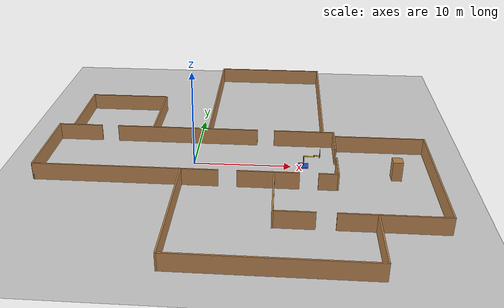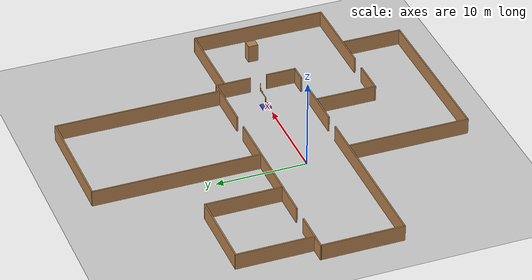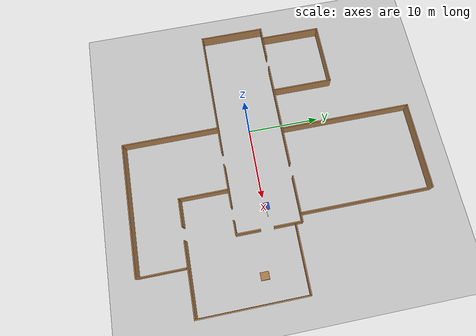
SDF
<sdf version="1.7">
 <world name="default">
  <model name="ground_plane">
   <static>1</static>
   <link name="link">
    <collision name="collision">
     <geometry><plane><normal>0 0 1</normal><size>25 25</size></plane></geometry>
     <surface><friction><ode><mu>100</mu><mu2>50</mu2></ode></friction></surface>
    </collision>
    <visual name="visual">
     <cast_shadows>0</cast_shadows>
     <geometry><plane><normal>0 0 1</normal><size>25 25</size></plane></geometry>
     <material>
      <script><uri>file://media/materials/scripts/gazebo.material</uri><name>Gazebo/Grey</name></script>
     </material>
    </visual>
   </link>
   <link name="startflag">
    <pose>0 0 0.115 0 -0 0</pose>
    <inertial>
     <mass>0.39</mass>
     <inertia><ixx>0.00058</ixx><ixy>0</ixy><ixz>0</ixz><iyy>0.00058</iyy><iyz>0</iyz><izz>0.00019</izz></inertia>
    </inertial>
    <collision name="collision"><geometry><box><size>1 1 0.01</size></box></geometry></collision>
    <visual name="visual">
     <geometry><box><size>1 1 0.01</size></box></geometry>
     <material>
      <script>
       <uri>model://apriltag/materials/scripts</uri>
       <uri>model://apriltag/materials/textures</uri>
       <name>startflag/Diffuse</name>
      </script>
     </material>
    </visual>
   </link>
  </model>
  <model name="house4">
   <pose>4.1908 2.60197 0 0 -0 0</pose>
   <link name="Wall_0">
    <collision name="Wall_0_Collision">
     <geometry><box><size>9.15 0.15 1.8</size></box></geometry>
     <pose>0 0 0.9 0 -0 0</pose>
    </collision>
    <visual name="Wall_0_Visual">
     <pose>0 0 0.9 0 -0 0</pose>
     <geometry><box><size>9.15 0.15 1.8</size></box></geometry>
     <material>
      <script><uri>file://media/materials/scripts/gazebo.material</uri><name>Gazebo/Wood</name></script>
      <ambient>1 1 1 1</ambient>
     </material>
     <meta><layer>0</layer></meta>
    </visual>
    <pose>-19.71 -2.4279 0 0 -0 -1.5708</pose>
   </link>
   <link name="Wall_1">
    <pose>-4.71 -6.9279 0 0 -0 0</pose>
    <visual name="Wall_1_Visual_0">
     <pose>-5.83035 0 0.9 0 -0 0</pose>
     <geometry><box><size>18.4893 0.15 1.8</size></box></geometry>
     <material>
      <script><uri>file://media/materials/scripts/gazebo.material</uri><name>Gazebo/Wood</name></script>
      <ambient>1 1 1 1</ambient>
     </material>
     <meta><layer>0</layer></meta>
    </visual>
    <collision name="Wall_1_Collision_0">
     <geometry><box><size>18.4893 0.15 1.8</size></box></geometry>
     <pose>-5.83035 0 0.9 0 -0 0</pose>
    </collision>
    <visual name="Wall_1_Visual_1">
     <pose>8.25278 0 0.9 0 -0 0</pose>
     <geometry><box><size>6.07697 0.15 1.8</size></box></geometry>
     <material>
      <script><uri>file://media/materials/scripts/gazebo.material</uri><name>Gazebo/Wood</name></script>
      <ambient>1 1 1 1</ambient>
     </material>
     <meta><layer>0</layer></meta>
    </visual>
    <collision name="Wall_1_Collision_1">
     <geometry><box><size>6.07697 0.15 1.8</size></box></geometry>
     <pose>8.25278 0 0.9 0 -0 0</pose>
    </collision>
    <visual name="Wall_1_Visual_2">
     <pose>14.0831 0 0.9 0 -0 0</pose>
     <geometry><box><size>1.98374 0.15 1.8</size></box></geometry>
     <material>
      <script><uri>file://media/materials/scripts/gazebo.material</uri><name>Gazebo/Wood</name></script>
      <ambient>1 1 1 1</ambient>
     </material>
     <meta><layer>0</layer></meta>
    </visual>
    <collision name="Wall_1_Collision_2">
     <geometry><box><size>1.98374 0.15 1.8</size></box></geometry>
     <pose>14.0831 0 0.9 0 -0 0</pose>
    </collision>
   </link>
   <link name="Wall_11">
    <collision name="Wall_11_Collision">
     <geometry><box><size>18.5 0.15 1.8</size></box></geometry>
     <pose>0 0 0.9 0 -0 0</pose>
    </collision>
    <visual name="Wall_11_Visual">
     <pose>0 0 0.9 0 -0 0</pose>
     <geometry><box><size>18.5 0.15 1.8</size></box></geometry>
     <material>
      <script><uri>file://media/materials/scripts/gazebo.material</uri><name>Gazebo/Wood</name></script>
      <ambient>1 1 1 1</ambient>
     </material>
     <meta><layer>0</layer></meta>
    </visual>
    <pose>-3.167 11.2531 0 0 -0 1.5708</pose>
   </link>
   <link name="Wall_12">
    <collision name="Wall_12_Collision">
     <geometry><box><size>12.5 0.15 1.8</size></box></geometry>
     <pose>0 0 0.9 0 -0 0</pose>
    </collision>
    <visual name="Wall_12_Visual">
     <pose>0 0 0.9 0 -0 0</pose>
     <geometry><box><size>12.5 0.15 1.8</size></box></geometry>
     <material>
      <script><uri>file://media/materials/scripts/gazebo.material</uri><name>Gazebo/Wood</name></script>
      <ambient>1 1 1 1</ambient>
     </material>
     <meta><layer>0</layer></meta>
    </visual>
    <pose>3.008 20.4281 0 0 -0 0</pose>
   </link>
   <link name="Wall_13">
    <collision name="Wall_13_Collision">
     <geometry><box><size>18.5 0.15 1.8</size></box></geometry>
     <pose>0 0 0.9 0 -0 0</pose>
    </collision>
    <visual name="Wall_13_Visual">
     <pose>0 0 0.9 0 -0 0</pose>
     <geometry><box><size>18.5 0.15 1.8</size></box></geometry>
     <material>
      <script><uri>file://media/materials/scripts/gazebo.material</uri><name>Gazebo/Wood</name></script>
      <ambient>1 1 1 1</ambient>
     </material>
     <meta><layer>0</layer></meta>
    </visual>
    <pose>9.183 11.2531 0 0 -0 -1.5708</pose>
   </link>
   <link name="Wall_15">
    <collision name="Wall_15_Collision">
     <geometry><box><size>9.5 0.15 1.8</size></box></geometry>
     <pose>0 0 0.9 0 -0 0</pose>
    </collision>
    <visual name="Wall_15_Visual">
     <pose>0 0 0.9 0 -0 0</pose>
     <geometry><box><size>9.5 0.15 1.8</size></box></geometry>
     <material>
      <script><uri>file://media/materials/scripts/gazebo.material</uri><name>Gazebo/Wood</name></script>
      <ambient>1 1 1 1</ambient>
     </material>
     <meta><layer>0</layer></meta>
    </visual>
    <pose>15.035 1.1501 0 0 -0 0</pose>
   </link>
   <link name="Wall_18">
    <collision name="Wall_18_Collision">
     <geometry><box><size>15 0.15 1.8</size></box></geometry>
     <pose>0 0 0.9 0 -0 0</pose>
    </collision>
    <visual name="Wall_18_Visual">
     <pose>0 0 0.9 0 -0 0</pose>
     <geometry><box><size>15 0.15 1.8</size></box></geometry>
     <material>
      <script><uri>file://media/materials/scripts/gazebo.material</uri><name>Gazebo/Wood</name></script>
      <ambient>1 1 1 1</ambient>
     </material>
     <meta><layer>0</layer></meta>
    </visual>
    <pose>19.71 -6.2749 0 0 -0 -1.5708</pose>
   </link>
   <link name="Wall_19">
    <pose>11.91 -13.6999 0 0 -0 3.14159</pose>
    <visual name="Wall_19_Visual_0">
     <pose>-2.84178 0 0.9 0 -0 0</pose>
     <geometry><box><size>10.0664 0.15 1.8</size></box></geometry>
     <material>
      <script><uri>file://media/materials/scripts/gazebo.material</uri><name>Gazebo/Wood</name></script>
      <ambient>1 1 1 1</ambient>
     </material>
     <meta><layer>0</layer></meta>
    </visual>
    <collision name="Wall_19_Collision_0">
     <geometry><box><size>10.0664 0.15 1.8</size></box></geometry>
     <pose>-2.84178 0 0.9 0 -0 0</pose>
    </collision>
    <visual name="Wall_19_Visual_1">
     <pose>5.93323 0 0.9 0 -0 0</pose>
     <geometry><box><size>3.88355 0.15 1.8</size></box></geometry>
     <material>
      <script><uri>file://media/materials/scripts/gazebo.material</uri><name>Gazebo/Wood</name></script>
      <ambient>1 1 1 1</ambient>
     </material>
     <meta><layer>0</layer></meta>
    </visual>
    <collision name="Wall_19_Collision_1">
     <geometry><box><size>3.88355 0.15 1.8</size></box></geometry>
     <pose>5.93323 0 0.9 0 -0 0</pose>
    </collision>
   </link>
   <link name="Wall_2">
    <pose>10.29 -2.4279 0 0 -0 1.5708</pose>
    <visual name="Wall_2_Visual_0">
     <pose>-2.88083 0 0.9 0 -0 0</pose>
     <geometry><box><size>3.38835 0.15 1.8</size></box></geometry>
     <material>
      <script><uri>file://media/materials/scripts/gazebo.material</uri><name>Gazebo/Wood</name></script>
      <ambient>1 1 1 1</ambient>
     </material>
     <meta><layer>0</layer></meta>
    </visual>
    <collision name="Wall_2_Collision_0">
     <geometry><box><size>3.38835 0.15 1.8</size></box></geometry>
     <pose>-2.88083 0 0.9 0 -0 0</pose>
    </collision>
    <visual name="Wall_2_Visual_1">
     <pose>2.59417 0 0.9 0 -0 0</pose>
     <geometry><box><size>3.96165 0.15 1.8</size></box></geometry>
     <material>
      <script><uri>file://media/materials/scripts/gazebo.material</uri><name>Gazebo/Wood</name></script>
      <ambient>1 1 1 1</ambient>
     </material>
     <meta><layer>0</layer></meta>
    </visual>
    <collision name="Wall_2_Collision_1">
     <geometry><box><size>3.96165 0.15 1.8</size></box></geometry>
     <pose>2.59417 0 0.9 0 -0 0</pose>
    </collision>
   </link>
   <link name="Wall_20">
    <collision name="Wall_20_Collision">
     <geometry><box><size>6.75 0.15 1.8</size></box></geometry>
     <pose>0 0 0.9 0 -0 0</pose>
    </collision>
    <visual name="Wall_20_Visual">
     <pose>0 0 0.9 0 -0 0</pose>
     <geometry><box><size>6.75 0.15 1.8</size></box></geometry>
     <material>
      <script><uri>file://media/materials/scripts/gazebo.material</uri><name>Gazebo/Wood</name></script>
      <ambient>1 1 1 1</ambient>
     </material>
     <meta><layer>0</layer></meta>
    </visual>
    <pose>4.11 -10.3999 0 0 -0 1.5708</pose>
   </link>
   <link name="Wall_24">
    <collision name="Wall_24_Collision">
     <geometry><box><size>13.6364 0.15 1.8</size></box></geometry>
     <pose>0 0 0.9 0 -0 0</pose>
    </collision>
    <visual name="Wall_24_Visual">
     <pose>0 0 0.9 0 -0 0</pose>
     <geometry><box><size>13.6364 0.15 1.8</size></box></geometry>
     <material>
      <script><uri>file://media/materials/scripts/gazebo.material</uri><name>Gazebo/Wood</name></script>
      <ambient>1 1 1 1</ambient>
     </material>
     <meta><layer>0</layer></meta>
    </visual>
    <pose>-4.972 -13.6849 0 0 -0 -1.5708</pose>
   </link>
   <link name="Wall_25">
    <collision name="Wall_25_Collision">
     <geometry><box><size>18.412 0.15 1.8</size></box></geometry>
     <pose>0 0 0.9 0 -0 0</pose>
    </collision>
    <visual name="Wall_25_Visual">
     <pose>0 0 0.9 0 -0 0</pose>
     <geometry><box><size>18.412 0.15 1.8</size></box></geometry>
     <material>
      <script><uri>file://media/materials/scripts/gazebo.material</uri><name>Gazebo/Wood</name></script>
      <ambient>1 1 1 1</ambient>
     </material>
     <meta><layer>0</layer></meta>
    </visual>
    <pose>4.159 -20.4279 0 0 -0 0</pose>
   </link>
   <link name="Wall_26">
    <collision name="Wall_26_Collision">
     <geometry><box><size>6.672 0.15 1.8</size></box></geometry>
     <pose>0 0 0.9 0 -0 0</pose>
    </collision>
    <visual name="Wall_26_Visual">
     <pose>0 0 0.9 0 -0 0</pose>
     <geometry><box><size>6.672 0.15 1.8</size></box></geometry>
     <material>
      <script><uri>file://media/materials/scripts/gazebo.material</uri><name>Gazebo/Wood</name></script>
      <ambient>1 1 1 1</ambient>
     </material>
     <meta><layer>0</layer></meta>
    </visual>
    <pose>13.29 -17.1669 0 0 -0 1.5708</pose>
   </link>
   <link name="Wall_3">
    <pose>-4.71 2.0721 0 0 -0 3.14159</pose>
    <visual name="Wall_3_Visual_0">
     <pose>-11.8572 0 0.9 0 -0 0</pose>
     <geometry><box><size>6.43566 0.15 1.8</size></box></geometry>
     <material>
      <script><uri>file://media/materials/scripts/gazebo.material</uri><name>Gazebo/Wood</name></script>
      <ambient>1 1 1 1</ambient>
     </material>
     <meta><layer>0</layer></meta>
    </visual>
    <collision name="Wall_3_Collision_0">
     <geometry><box><size>6.43566 0.15 1.8</size></box></geometry>
     <pose>-11.8572 0 0.9 0 -0 0</pose>
    </collision>
    <visual name="Wall_3_Visual_1">
     <pose>0.825947 0 0.9 0 -0 0</pose>
     <geometry><box><size>15.3306 0.15 1.8</size></box></geometry>
     <material>
      <script><uri>file://media/materials/scripts/gazebo.material</uri><name>Gazebo/Wood</name></script>
      <ambient>1 1 1 1</ambient>
     </material>
     <meta><layer>0</layer></meta>
    </visual>
    <collision name="Wall_3_Collision_1">
     <geometry><box><size>15.3306 0.15 1.8</size></box></geometry>
     <pose>0.825947 0 0.9 0 -0 0</pose>
    </collision>
    <visual name="Wall_3_Visual_2">
     <pose>12.6831 0 0.9 0 -0 0</pose>
     <geometry><box><size>4.78376 0.15 1.8</size></box></geometry>
     <material>
      <script><uri>file://media/materials/scripts/gazebo.material</uri><name>Gazebo/Wood</name></script>
      <ambient>1 1 1 1</ambient>
     </material>
     <meta><layer>0</layer></meta>
    </visual>
    <collision name="Wall_3_Collision_2">
     <geometry><box><size>4.78376 0.15 1.8</size></box></geometry>
     <pose>12.6831 0 0.9 0 -0 0</pose>
    </collision>
   </link>
   <link name="Wall_5">
    <collision name="Wall_5_Collision">
     <geometry><box><size>8.5 0.15 1.8</size></box></geometry>
     <pose>0 0 0.9 0 -0 0</pose>
    </collision>
    <visual name="Wall_5_Visual">
     <pose>0 0 0.9 0 -0 0</pose>
     <geometry><box><size>8.5 0.15 1.8</size></box></geometry>
     <material>
      <script><uri>file://media/materials/scripts/gazebo.material</uri><name>Gazebo/Wood</name></script>
      <ambient>1 1 1 1</ambient>
     </material>
     <meta><layer>0</layer></meta>
    </visual>
    <pose>-18.109 6.2961 0 0 -0 1.5708</pose>
   </link>
   <link name="Wall_6">
    <collision name="Wall_6_Collision">
     <geometry><box><size>9 0.15 1.8</size></box></geometry>
     <pose>0 0 0.9 0 -0 0</pose>
    </collision>
    <visual name="Wall_6_Visual">
     <pose>0 0 0.9 0 -0 0</pose>
     <geometry><box><size>9 0.15 1.8</size></box></geometry>
     <material>
      <script><uri>file://media/materials/scripts/gazebo.material</uri><name>Gazebo/Wood</name></script>
      <ambient>1 1 1 1</ambient>
     </material>
     <meta><layer>0</layer></meta>
    </visual>
    <pose>-13.684 10.4711 0 0 -0 0</pose>
   </link>
   <link name="Wall_7">
    <collision name="Wall_7_Collision">
     <geometry><box><size>8.5 0.15 1.8</size></box></geometry>
     <pose>0 0 0.9 0 -0 0</pose>
    </collision>
    <visual name="Wall_7_Visual">
     <pose>0 0 0.9 0 -0 0</pose>
     <geometry><box><size>8.5 0.15 1.8</size></box></geometry>
     <material>
      <script><uri>file://media/materials/scripts/gazebo.material</uri><name>Gazebo/Wood</name></script>
      <ambient>1 1 1 1</ambient>
     </material>
     <meta><layer>0</layer></meta>
    </visual>
    <pose>-9.259 6.2961 0 0 -0 -1.5708</pose>
   </link>
   <static>1</static>
  </model>
  <model name="unit_box_clone_clone">
   <pose>20.3983 -1.57145 1.01795 -4e-06 -2e-06 0.002461</pose>
   <link name="link">
    <inertial>
     <mass>1</mass>
     <inertia>
      <ixx>0.166667</ixx>
      <ixy>0</ixy>
      <ixz>0</ixz>
      <iyy>0.166667</iyy>
      <iyz>0</iyz>
      <izz>0.166667</izz>
     </inertia>
    </inertial>
    <collision name="collision"><geometry><box><size>1 1.11313 2.03591</size></box></geometry></collision>
    <visual name="visual">
     <geometry><box><size>1 1.11313 2.03591</size></box></geometry>
     <material>
      <script><uri>file://media/materials/scripts/gazebo.material</uri><name>Gazebo/Wood</name></script>
     </material>
    </visual>
   </link>
   <static>0</static>
  </model>
  <model name="simple_arm_clone">
   <link name="arm_base">
    <inertial>
     <pose>0 0 0.00099 0 -0 0</pose>
     <inertia><ixx>1.11</ixx><ixy>0</ixy><ixz>0</ixz><iyy>100.11</iyy><iyz>0</iyz><izz>1.01</izz></inertia>
     <mass>101</mass>
    </inertial>
    <collision name="arm_base_geom">
     <pose>0 0 0.05 0 -0 0</pose>
     <geometry><box><size>1 1 0.1</size></box></geometry>
    </collision>
    <visual name="arm_base_geom_visual">
     <pose>0 0 0.05 0 -0 0</pose>
     <geometry><box><size>1 1 0.1</size></box></geometry>
     <material>
      <script><uri>file://media/materials/scripts/gazebo.material</uri><name>Gazebo/Blue</name></script>
     </material>
    </visual>
    <collision name="arm_base_geom_arm_trunk">
     <pose>0 0 0.6 0 -0 0</pose>
     <geometry><cylinder><radius>0.05</radius><length>1</length></cylinder></geometry>
    </collision>
    <visual name="arm_base_geom_arm_trunk_visual">
     <pose>0 0 0.6 0 -0 0</pose>
     <geometry><cylinder><radius>0.05</radius><length>1</length></cylinder></geometry>
     <material>
      <script><uri>file://media/materials/scripts/gazebo.material</uri><name>Gazebo/Red</name></script>
     </material>
    </visual>
   </link>
   <link name="arm_shoulder_pan">
    <pose>0 0 1.1 0 -0 0</pose>
    <inertial>
     <pose>0.045455 0 0 0 -0 0</pose>
     <inertia><ixx>0.011</ixx><ixy>0</ixy><ixz>0</ixz><iyy>0.0225</iyy><iyz>0</iyz><izz>0.0135</izz></inertia>
     <mass>1.1</mass>
    </inertial>
    <collision name="arm_shoulder_pan_geom">
     <pose>0 0 0.05 0 -0 0</pose>
     <geometry><cylinder><radius>0.05</radius><length>0.1</length></cylinder></geometry>
    </collision>
    <visual name="arm_shoulder_pan_geom_visual">
     <pose>0 0 0.05 0 -0 0</pose>
     <geometry><cylinder><radius>0.05</radius><length>0.1</length></cylinder></geometry>
     <material>
      <script><uri>file://media/materials/scripts/gazebo.material</uri><name>Gazebo/Yellow</name></script>
     </material>
    </visual>
    <collision name="arm_shoulder_pan_geom_arm_shoulder">
     <pose>0.55 0 0.05 0 -0 0</pose>
     <geometry><box><size>1 0.05 0.1</size></box></geometry>
    </collision>
    <visual name="arm_shoulder_pan_geom_arm_shoulder_visual">
     <pose>0.55 0 0.05 0 -0 0</pose>
     <geometry><box><size>1 0.05 0.1</size></box></geometry>
     <material>
      <script><uri>file://media/materials/scripts/gazebo.material</uri><name>Gazebo/Yellow</name></script>
     </material>
    </visual>
   </link>
   <link name="arm_elbow_pan">
    <pose>1.05 0 1.1 0 -0 0</pose>
    <inertial>
     <pose>0.0875 0 0.083333 0 -0 0</pose>
     <inertia>
      <ixx>0.031</ixx>
      <ixy>0</ixy>
      <ixz>0.005</ixz>
      <iyy>0.07275</iyy>
      <iyz>0</iyz>
      <izz>0.04475</izz>
     </inertia>
     <mass>1.2</mass>
    </inertial>
    <collision name="arm_elbow_pan_geom">
     <pose>0 0 0.1 0 -0 0</pose>
     <geometry><cylinder><radius>0.05</radius><length>0.2</length></cylinder></geometry>
    </collision>
    <visual name="arm_elbow_pan_geom_visual">
     <pose>0 0 0.1 0 -0 0</pose>
     <geometry><cylinder><radius>0.05</radius><length>0.2</length></cylinder></geometry>
     <material>
      <script><uri>file://media/materials/scripts/gazebo.material</uri><name>Gazebo/Red</name></script>
     </material>
    </visual>
    <collision name="arm_elbow_pan_geom_arm_elbow">
     <pose>0.3 0 0.15 0 -0 0</pose>
     <geometry><box><size>0.5 0.03 0.1</size></box></geometry>
    </collision>
    <visual name="arm_elbow_pan_geom_arm_elbow_visual">
     <pose>0.3 0 0.15 0 -0 0</pose>
     <geometry><box><size>0.5 0.03 0.1</size></box></geometry>
     <material>
      <script><uri>file://media/materials/scripts/gazebo.material</uri><name>Gazebo/Yellow</name></script>
     </material>
    </visual>
    <collision name="arm_elbow_pan_geom_arm_wrist">
     <pose>0.55 0 0.15 0 -0 0</pose>
     <geometry><cylinder><radius>0.05</radius><length>0.3</length></cylinder></geometry>
    </collision>
    <visual name="arm_elbow_pan_geom_arm_wrist_visual">
     <pose>0.55 0 0.15 0 -0 0</pose>
     <geometry><cylinder><radius>0.05</radius><length>0.3</length></cylinder></geometry>
     <material>
      <script><uri>file://media/materials/scripts/gazebo.material</uri><name>Gazebo/Red</name></script>
     </material>
    </visual>
   </link>
   <link name="arm_wrist_lift">
    <pose>1.6 0 1.05 0 -0 0</pose>
    <inertial>
     <inertia><ixx>0.01</ixx><ixy>0</ixy><ixz>0</ixz><iyy>0.01</iyy><iyz>0</iyz><izz>0.001</izz></inertia>
     <mass>0.1</mass>
    </inertial>
    <collision name="arm_wrist_lift_geom">
     <pose>0 0 0.5 0 -0 0</pose>
     <geometry><cylinder><radius>0.03</radius><length>1</length></cylinder></geometry>
    </collision>
    <visual name="arm_wrist_lift_geom_visual">
     <pose>0 0 0.5 0 -0 0</pose>
     <geometry><cylinder><radius>0.03</radius><length>1</length></cylinder></geometry>
     <material>
      <script><uri>file://media/materials/scripts/gazebo.material</uri><name>Gazebo/Yellow</name></script>
     </material>
    </visual>
   </link>
   <link name="arm_wrist_roll">
    <pose>1.6 0 1 0 -0 0</pose>
    <inertial>
     <inertia><ixx>0.01</ixx><ixy>0</ixy><ixz>0</ixz><iyy>0.01</iyy><iyz>0</iyz><izz>0.001</izz></inertia>
     <mass>0.1</mass>
    </inertial>
    <collision name="arm_wrist_roll_geom">
     <pose>0 0 0.025 0 -0 0</pose>
     <geometry><cylinder><radius>0.05</radius><length>0.05</length></cylinder></geometry>
    </collision>
    <visual name="arm_wrist_roll_geom_visual">
     <pose>0 0 0.025 0 -0 0</pose>
     <geometry><cylinder><radius>0.05</radius><length>0.05</length></cylinder></geometry>
     <material>
      <script><uri>file://media/materials/scripts/gazebo.material</uri><name>Gazebo/Red</name></script>
     </material>
    </visual>
   </link>
   <joint name="arm_shoulder_pan_joint" type="revolute">
    <parent>arm_base</parent>
    <child>arm_shoulder_pan</child>
    <axis>
     <dynamics>
      <damping>1</damping>
      <friction>0</friction>
      <spring_reference>0</spring_reference>
      <spring_stiffness>0</spring_stiffness>
     </dynamics>
     <xyz expressed_in="__model__">0 0 1</xyz>
     <limit><lower>-1e+16</lower><upper>1e+16</upper></limit>
    </axis>
   </joint>
   <joint name="arm_elbow_pan_joint" type="revolute">
    <parent>arm_shoulder_pan</parent>
    <child>arm_elbow_pan</child>
    <axis>
     <dynamics>
      <damping>1</damping>
      <friction>0</friction>
      <spring_reference>0</spring_reference>
      <spring_stiffness>0</spring_stiffness>
     </dynamics>
     <xyz expressed_in="__model__">0 0 1</xyz>
     <limit><lower>-1e+16</lower><upper>1e+16</upper></limit>
    </axis>
   </joint>
   <joint name="arm_wrist_lift_joint" type="prismatic">
    <parent>arm_elbow_pan</parent>
    <child>arm_wrist_lift</child>
    <axis>
     <dynamics>
      <damping>1</damping>
      <friction>0</friction>
      <spring_reference>0</spring_reference>
      <spring_stiffness>0</spring_stiffness>
     </dynamics>
     <limit><lower>-0.8</lower><upper>0.1</upper></limit>
     <xyz expressed_in="__model__">0 0 1</xyz>
    </axis>
   </joint>
   <joint name="arm_wrist_roll_joint" type="revolute">
    <parent>arm_wrist_lift</parent>
    <child>arm_wrist_roll</child>
    <axis>
     <dynamics>
      <damping>1</damping>
      <friction>0</friction>
      <spring_reference>0</spring_reference>
      <spring_stiffness>0</spring_stiffness>
     </dynamics>
     <limit><lower>-2.99999</lower><upper>2.99999</upper></limit>
     <xyz expressed_in="__model__">0 0 1</xyz>
    </axis>
   </joint>
   <pose>11.2552 0.258285 -0 0 -0 0.001722</pose>
  </model>
 </world>
</sdf>
